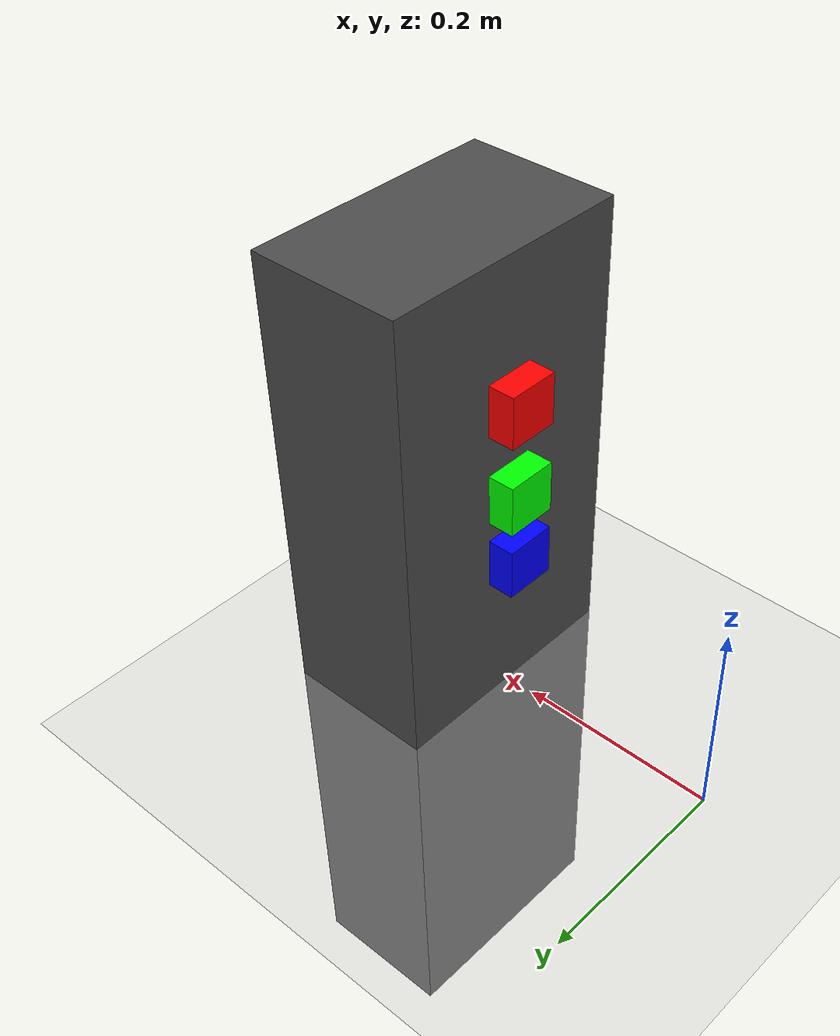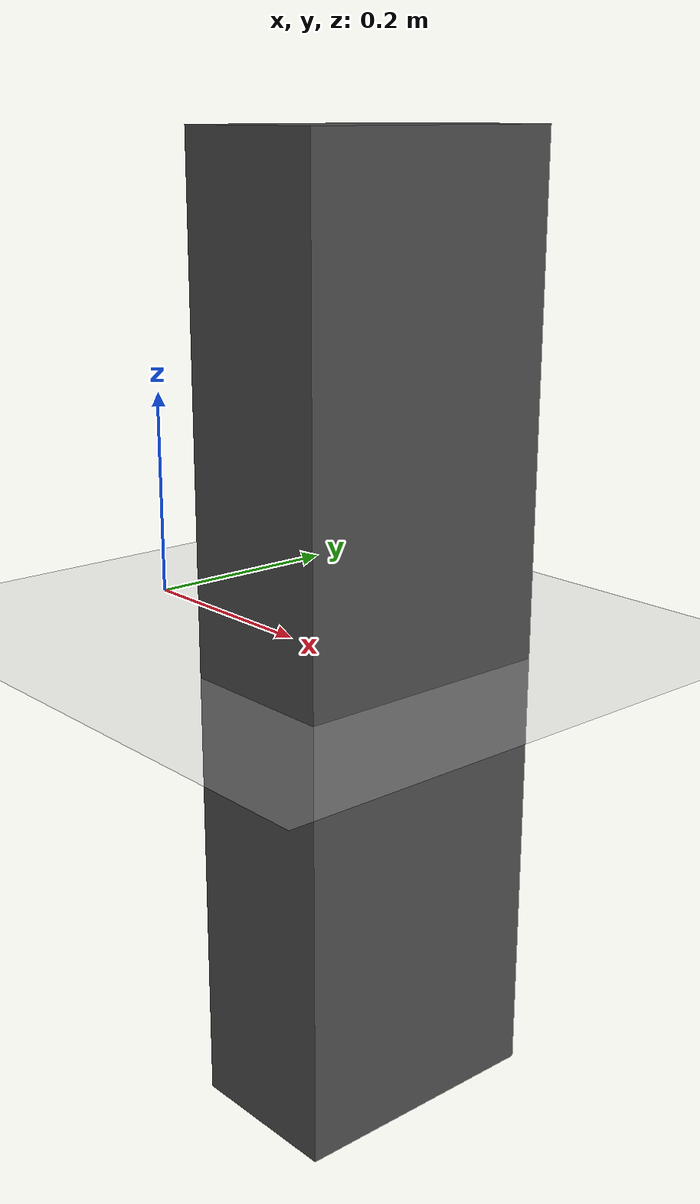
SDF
<?xml version="1.0" ?>
<sdf version="1.7">
  <world name="roomie_simple_world">
    <!-- Physics settings -->
    <physics name="1ms" type="ignored">
      <max_step_size>0.001</max_step_size>
      <real_time_factor>1.0</real_time_factor>
    </physics>

    <!-- Plugins -->
    <plugin
      filename="gz-sim-physics-system"
      name="gz::sim::systems::Physics">
    </plugin>
    <plugin
      filename="gz-sim-user-commands-system"
      name="gz::sim::systems::UserCommands">
    </plugin>
    <plugin
      filename="gz-sim-scene-broadcaster-system"
      name="gz::sim::systems::SceneBroadcaster">
    </plugin>
    <plugin
      filename="gz-sim-contact-system"
      name="gz::sim::systems::Contact">
    </plugin>
    <plugin
      filename="gz-sim-sensors-system"
      name="gz::sim::systems::Sensors">
      <render_engine>ogre2</render_engine>
    </plugin>

    <!-- Lighting -->
    <light type="directional" name="sun">
      <cast_shadows>true</cast_shadows>
      <pose>0 0 10 0 0 0</pose>
      <diffuse>0.8 0.8 0.8 1</diffuse>
      <specular>0.2 0.2 0.2 1</specular>
      <attenuation>
        <range>1000</range>
        <constant>0.9</constant>
        <linear>0.01</linear>
        <quadratic>0.001</quadratic>
      </attenuation>
      <direction>-0.5 0.1 -0.9</direction>
    </light>

    <!-- Ground plane -->
    <model name="ground_plane">
      <static>true</static>
      <link name="link">
        <collision name="collision">
          <geometry>
            <plane>
              <normal>0 0 1</normal>
              <size>100 100</size>
            </plane>
          </geometry>
        </collision>
        <visual name="visual">
          <geometry>
            <plane>
              <normal>0 0 1</normal>
              <size>100 100</size>
            </plane>
          </geometry>
          <material>
            <ambient>0.8 0.8 0.8 1</ambient>
            <diffuse>0.8 0.8 0.8 1</diffuse>
            <specular>0.8 0.8 0.8 1</specular>
          </material>
        </visual>
      </link>
    </model>

    <!-- Red Target Cube (ArUco 마커 대신) -->
    <model name="red_target">
      <static>true</static>
      <pose>0.23 0 0.32 0 0 0</pose>
      <link name="link">
        <collision name="collision">
          <geometry>
            <box>
              <size>0.05 0.05 0.05</size>
            </box>
          </geometry>
        </collision>
        <visual name="visual">
          <geometry>
            <box>
              <size>0.05 0.05 0.05</size>
            </box>
          </geometry>
          <material>
            <ambient>1.0 0.0 0.0 1</ambient>
            <diffuse>1.0 0.0 0.0 1</diffuse>
            <specular>0.1 0.1 0.1 1</specular>
          </material>
        </visual>
      </link>
    </model>

    <!-- Green Target Cube -->
    <model name="green_target">
      <static>true</static>
      <pose>0.23 0.0 0.23 0 0 0</pose>
      <link name="link">
        <collision name="collision">
          <geometry>
            <box>
              <size>0.05 0.05 0.05</size>
            </box>
          </geometry>
        </collision>
        <visual name="visual">
          <geometry>
            <box>
              <size>0.05 0.05 0.05</size>
            </box>
          </geometry>
          <material>
            <ambient>0.0 1.0 0.0 1</ambient>
            <diffuse>0.0 1.0 0.0 1</diffuse>
            <specular>0.1 0.1 0.1 1</specular>
          </material>
        </visual>
      </link>
    </model>

    <!-- Blue Target Cube -->
    <model name="blue_target">
      <static>true</static>
      <pose>0.23 0.0 0.16 0 0 0</pose>
      <link name="link">
        <collision name="collision">
          <geometry>
            <box>
              <size>0.05 0.05 0.05</size>
            </box>
          </geometry>
        </collision>
        <visual name="visual">
          <geometry>
            <box>
              <size>0.05 0.05 0.05</size>
            </box>
          </geometry>
          <material>
            <ambient>0.0 0.0 1.0 1</ambient>
            <diffuse>0.0 0.0 1.0 1</diffuse>
            <specular>0.1 0.1 0.1 1</specular>
          </material>
        </visual>
      </link>
    </model>

    <!-- Control Panel Base -->
    <model name="control_panel">
      <static>true</static>
      <pose>0.3061 0 0.02 0 0 0</pose>
      <link name="panel_base">
        <collision name="collision">
          <geometry>
            <box>
              <size>0.15 0.25 0.86</size>
            </box>
          </geometry>
        </collision>
        <visual name="visual">
          <geometry>
            <box>
              <size>0.15 0.25 0.86</size>
            </box>
          </geometry>
          <material>
            <ambient>0.2 0.2 0.2 1</ambient>
            <diffuse>0.3 0.3 0.3 1</diffuse>
          </material>
        </visual>
      </link>
    </model>

  </world>
</sdf>
